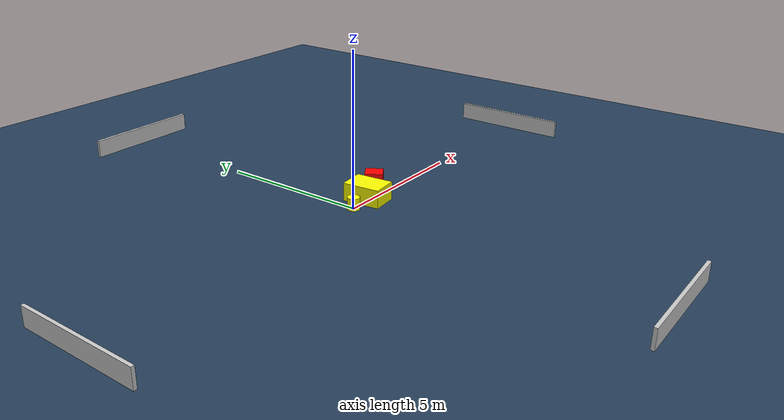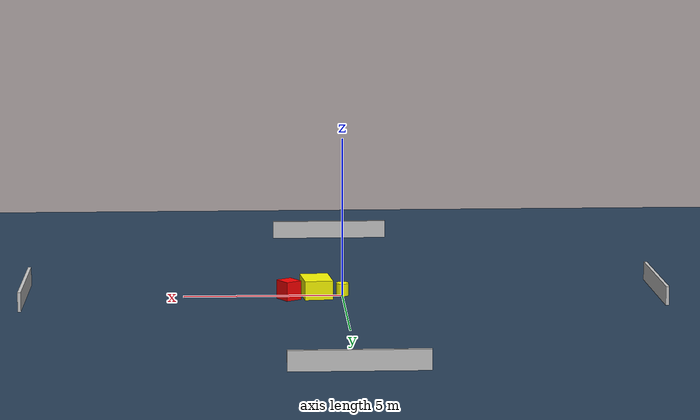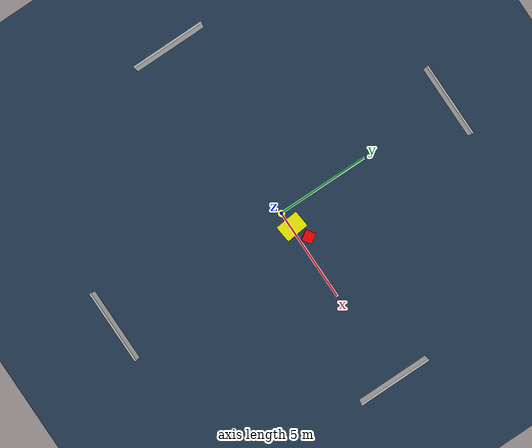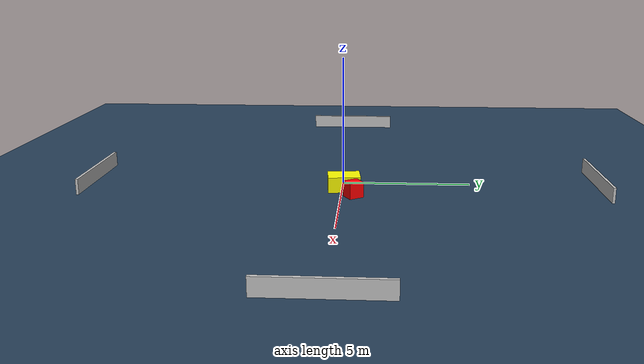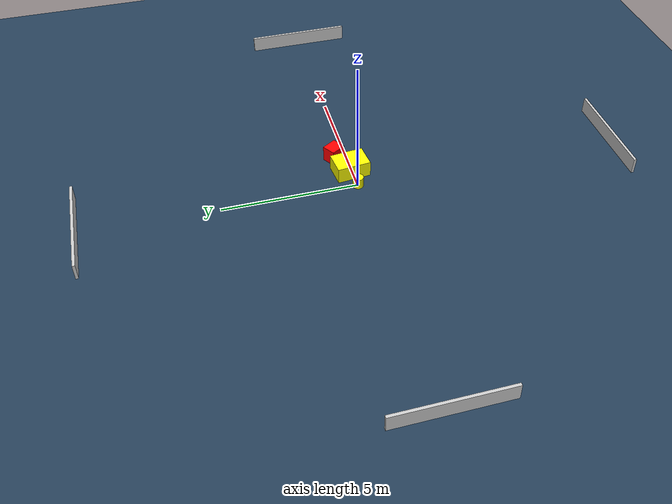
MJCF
<?xml version="1.0" ?>
<mujoco model="generated_environment">
  <option timestep="0.01" integrator="RK4" cone="elliptic"/>
  <default>
    <geom density="1"/>
  </default>
  <asset>
    <texture builtin="gradient" height="3072" name="skybox" rgb1="0.3 0.5 0.7" rgb2="0 0 0" type="skybox" width="512"/>
    <texture builtin="checker" height="300" name="groundplane" rgb1="0.2 0.3 0.4" rgb2="0.1 0.2 0.3" type="2d" width="300"/>
    <material name="groundplane" reflectance="0.2" texrepeat="5 5" texture="groundplane"/>
  </asset>
  <worldbody>
    <light dir="0 0 -1" directional="true" pos="0 0 1.5"/>
    <geom condim="3" friction="0.5 0.005 0.001" material="groundplane" name="floor" pos="0 0 0" size="0 0 0.05" type="plane"/>
    <body name="walls">
      <geom name="wall_1" condim="4" pos="-10.0 0.0 0.3" rgba="0.800000011920929 0.800000011920929 0.800000011920929 1.0" size="0.05 2.0 0.3" type="box"/>
      <geom name="wall_2" condim="4" pos="10.0 0.0 0.3" rgba="0.800000011920929 0.800000011920929 0.800000011920929 1.0" size="0.05 2.0 0.3" type="box"/>
      <geom name="wall_3" condim="4" pos="0.0 -10.0 0.3" rgba="0.800000011920929 0.800000011920929 0.800000011920929 1.0" size="2.0 0.05 0.3" type="box"/>
      <geom name="wall_4" condim="4" pos="0.0 10.0 0.3" rgba="0.800000011920929 0.800000011920929 0.800000011920929 1.0" size="2.0 0.05 0.3" type="box"/>
    </body>
    <body name="robot">
      <joint name="joint_x" type="slide" pos="0 0 0" axis="1 0 0"/>
      <joint name="joint_y" type="slide" pos="0 0 0" axis="0 1 0"/>
      <geom name="robot" type="cylinder" pos="0.0 0.0 0.2" size="0.2 0.2 0.0" mass="5.0" friction="1.0 0.005 0.0001" condim="4" rgba="1.0 1.0 0.0 1.0"/>
    </body>
    <body name="obstacle_1_movable">
      <geom name="obstacle_1_movable" condim="4" pos="0.8246162331569766 0.07394476058403551 0.3" euler="0 0 6.033460725643711" friction="0.0 0.005 0.001" rgba="1.0 1.0 0.0 1.0" size="0.4462445562868274 0.6237657010874309 0.3" type="box" mass="0.1"/>
      <joint type="free"/>
    </body>
    <body name="obstacle_2_static">
      <geom name="obstacle_2_static" condim="4" pos="1.7021114395057355 0.47201860133489804 0.3" euler="0 0 122.14070544451657" friction="0.0 0.005 0.001" rgba="1.0 0.0 0.0 1.0" size="0.2916485649678142 0.26278461850086543 0.3" type="box"/>
    </body>
  </worldbody>
  <actuator>
    <motor name="actuator_x" joint="joint_x" gear="1" ctrlrange="-1 1"/>
    <motor name="actuator_y" joint="joint_y" gear="1" ctrlrange="-1 1"/>
  </actuator>
</mujoco>
